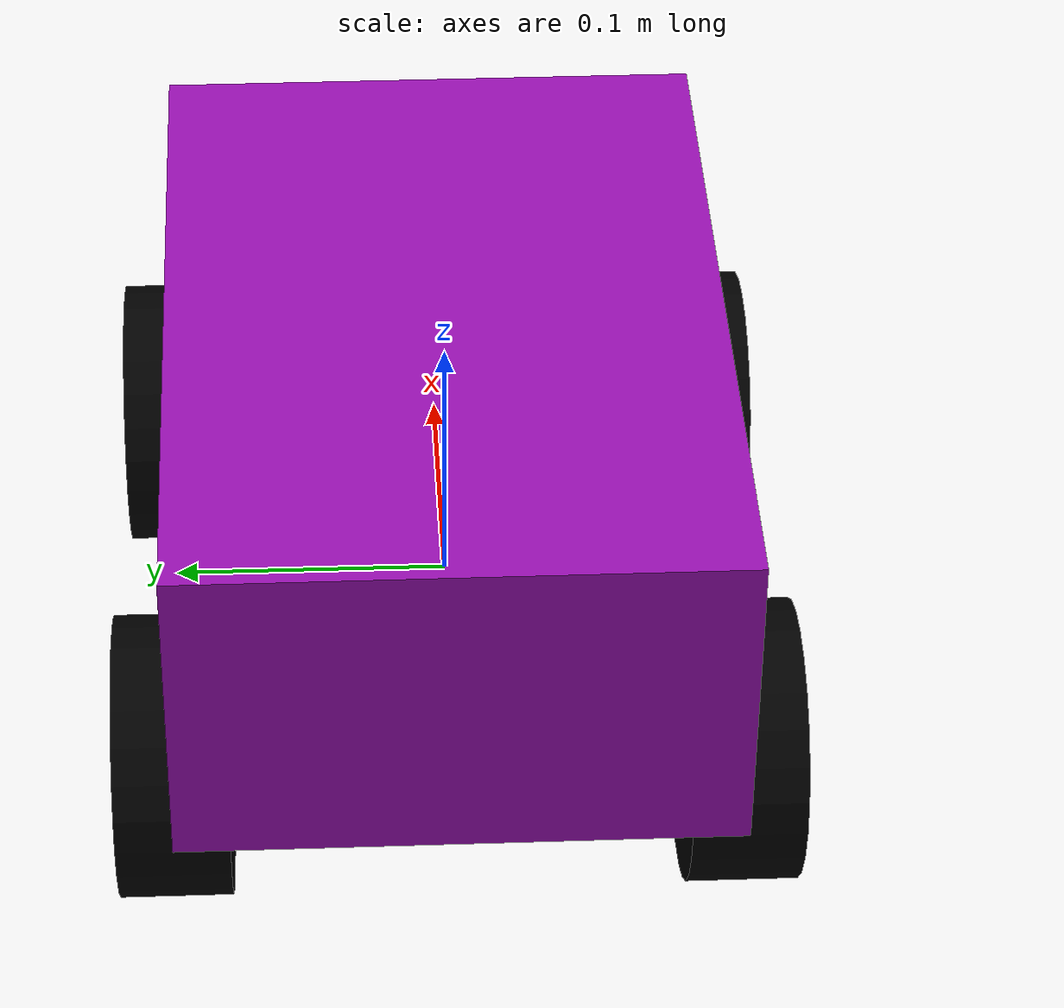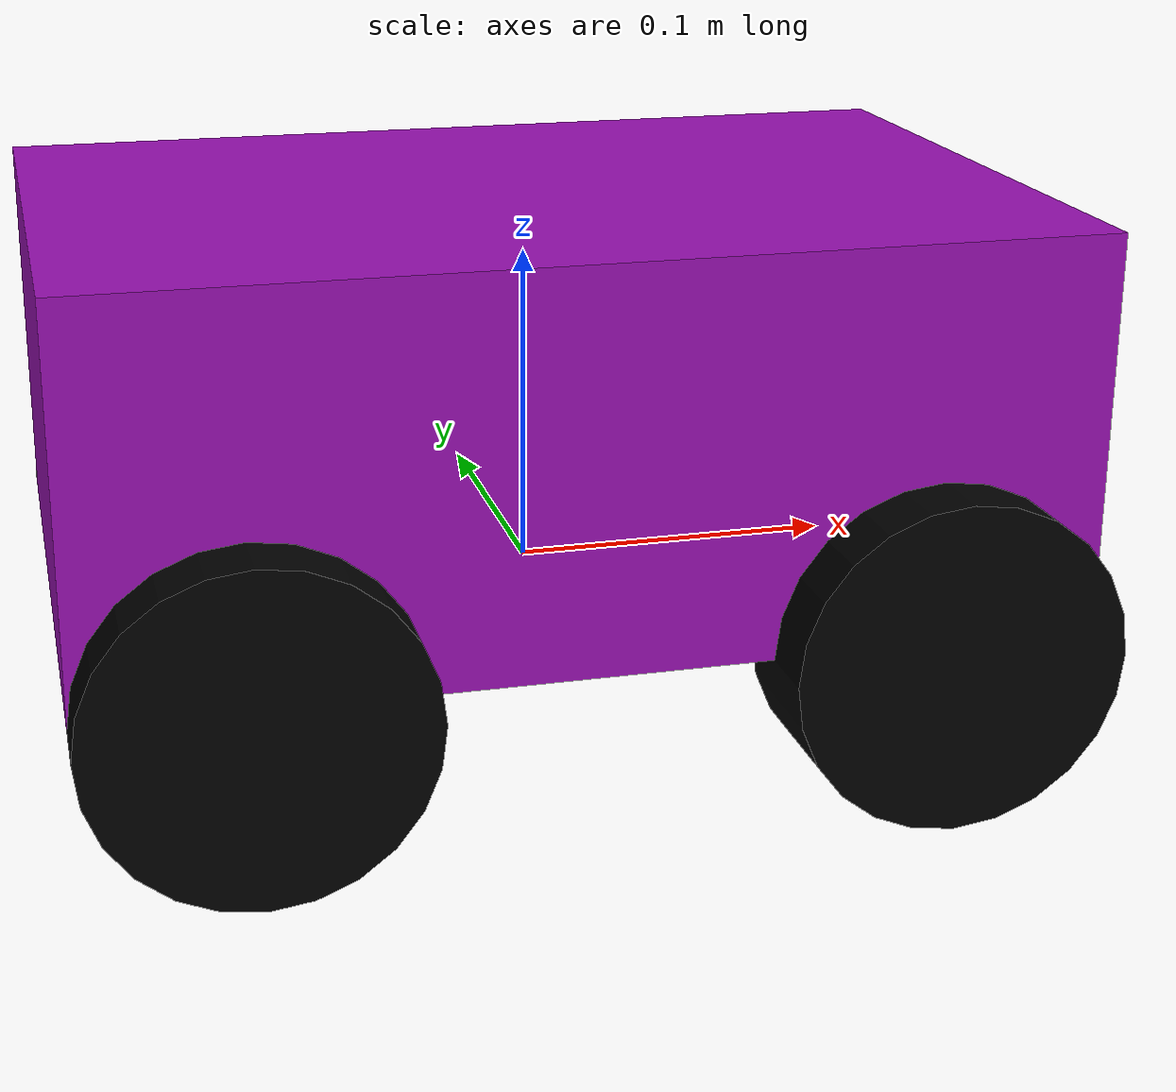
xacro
<?xml version="1.0"?>
<robot xmlns:xacro="http://www.ros.org/wiki/xacro">

    <xacro:include filename='inertial_macros.xacro'></xacro:include>

    <material name="white">
        <color rgba="1 1 1 1"></color>
    </material>

    <material name="black">
        <color rgba="0 0 0 1"></color>
    </material>

    <material name="purple">
        <color rgba="0.6 0.06 0.7 1"></color>
    </material>

    <material name="magenta">
        <color rgba="0.75 0 0.4 1"></color>
    </material>

    <!-- BASE LINK-->

    <link name="base_link">

    </link>

    <!-- CHASSIS LINK-->

    <joint name="chassis_joint" type="fixed">
        <parent link="base_link"></parent>
        <child link="chassis"></child>
        <origin xyz="-0.15 0 0"></origin>
    </joint>

    <link name="chassis">
        <visual>
            <origin xyz="0.15 0 0.06"></origin>
            <geometry>
                <box size="0.3 0.2 0.12"></box>
            </geometry>
            <material name="purple"></material>
        </visual>
        <collision>
            <origin xyz="0.15 0 0.06"></origin>
            <geometry>
                <box size="0.3 0.2 0.12"></box>
            </geometry>
        </collision>

        <xacro:inertial_box mass="0.5" x="0.3" y="0.2" z="0.12">
            <origin xyz="0.15 0 0.06" rpy="0 0 0"></origin>
        </xacro:inertial_box>
    </link>

    <gazebo reference="chassis">
        <material>Gazebo/Purple</material>
    </gazebo>

    <!-- BACK LEFT WHEEL LINK-->

    <joint name="back_left_wheel_joint" type="continuous">
        <parent link="base_link"></parent>
        <child link="back_left_wheel"></child>
        <origin xyz="-0.1 0.1 0" rpy="-${pi/2} 0 0"></origin>
        <axis xyz="0 0 1"></axis>
    </joint>

    <link name="back_left_wheel">
        <visual>

            <geometry>
                <cylinder radius="0.05" length="0.04"></cylinder>
            </geometry>
            <material name="black"></material>
        </visual>
        <collision>
            <geometry>
                <cylinder radius="0.05" length="0.04"></cylinder>
            </geometry>
        </collision>
        <xacro:inertial_cylinder mass="0.1" length="0.04" radius="0.05">
            <origin xyz="0 0 0" rpy="0 0 0"></origin>
        </xacro:inertial_cylinder>
    </link>

    <gazebo reference="back_left_wheel">
        <material>Gazebo/Black</material>
    </gazebo>

    <!-- BACK RIGHT WHEEL LINK-->

    <joint name="back_right_wheel_joint" type="continuous">
        <parent link="base_link"></parent>
        <child link="back_right_wheel"></child>
        <origin xyz="-0.1 -0.1 0" rpy="${pi/2} 0 0"></origin>
        <axis xyz="0 0 -1"></axis>
    </joint>

    <link name="back_right_wheel">
        <visual>

            <geometry>
                <cylinder radius="0.05" length="0.04"></cylinder>
            </geometry>
            <material name="black"></material>
        </visual>

        <collision>
            <geometry>
                <cylinder radius="0.05" length="0.04"></cylinder>
            </geometry>
        </collision>

        <xacro:inertial_cylinder mass="0.1" length="0.04" radius="0.05">
            <origin xyz="0 0 0" rpy="0 0 0"></origin>
        </xacro:inertial_cylinder>
    </link>

    <gazebo reference="back_right_wheel">
        <material>Gazebo/Black</material>
    </gazebo>

    <!-- FRONT LEFT WHEEL LINK-->

    <joint name="front_left_wheel_joint" type="continuous">
        <parent link="base_link"></parent>
        <child link="front_left_wheel"></child>
        <origin xyz="0.1 0.1 0" rpy="-${pi/2} 0 0"></origin>
        <axis xyz="0 0 1"></axis>
    </joint>

    <link name="front_left_wheel">
        <visual>

            <geometry>
                <cylinder radius="0.05" length="0.04"></cylinder>
            </geometry>
            <material name="black"></material>
        </visual>

        <collision>
            <geometry>
                <cylinder radius="0.05" length="0.04"></cylinder>
            </geometry>
        </collision>

        <xacro:inertial_cylinder mass="0.1" length="0.04" radius="0.05">
            <origin xyz="0 0 0" rpy="0 0 0"></origin>
        </xacro:inertial_cylinder>
    </link>

    <gazebo reference="front_left_wheel">
        <material>Gazebo/Black</material>
    </gazebo>

    <!-- FRONT RIGHT WHEEL LINK-->

    <joint name="front_right_wheel_joint" type="continuous">
        <parent link="base_link"></parent>
        <child link="front_right_wheel"></child>
        <origin xyz="0.1 -0.1 0" rpy="${pi/2} 0 0"></origin>
        <axis xyz="0 0 -1"></axis>
    </joint>

    <link name="front_right_wheel">
        <visual>

            <geometry>
                <cylinder radius="0.05" length="0.04"></cylinder>
            </geometry>
            <material name="black"></material>
        </visual>

        <collision>
            <geometry>
                <cylinder radius="0.05" length="0.04"></cylinder>
            </geometry>
        </collision>

        <xacro:inertial_cylinder mass="0.1" length="0.04" radius="0.05">
            <origin xyz="0 0 0" rpy="0 0 0"></origin>
        </xacro:inertial_cylinder>
    </link>

    <gazebo reference="front_right_wheel">
        <material>Gazebo/Black</material>
    </gazebo>

</robot>
